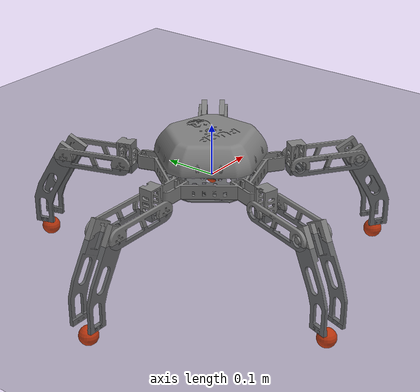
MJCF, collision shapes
<mujoco model="pentabot scene">
  <include file="pentabot.xml"/>
  <statistic center="0 0 0.1" extent="0.6"/>
  <visual>
    <headlight diffuse="0.6 0.6 0.6" ambient="0.3 0.3 0.3" specular="0 0 0"/>
    <global azimuth="120" elevation="-25" offwidth="1920" offheight="1080"/>
  </visual>
  <asset>
    <texture type="skybox" builtin="gradient" rgb1="0.25 0.28 0.33" rgb2="0.12 0.13 0.16" width="512" height="512"/>
    <texture type="2d" name="grid" builtin="checker" mark="edge" rgb1="0.2 0.22 0.25" rgb2="0.15 0.16 0.19"
             markrgb="0.8 0.8 0.8" width="300" height="300"/>
    <material name="grid" texture="grid" texrepeat="5 5" texuniform="true" reflectance="0.1"/>
  </asset>
  <worldbody>
    <light pos="0 0 1.5" dir="0 0 -1" directional="true"/>
    <geom name="floor" type="plane" size="0 0 0.05" material="grid" contype="1" conaffinity="1" condim="3" friction="0.9 0.005 0.0001"/>
  </worldbody>
</mujoco>

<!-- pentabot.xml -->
<mujoco model="pentabot">
  <compiler angle="radian" meshdir="assets" inertiafromgeom="false" autolimits="true"/>

  <option timestep="0.002" integrator="implicitfast" cone="elliptic" impratio="10"/>

  <default>
    <default class="pentabot">
      <default class="mg995">
        <!-- motor: damping = tau_stall/omega_0 reproduce la curva par-velocidad;
             armature = inercia reflejada del rotor (estimada, calibrar); frictionloss = rozamiento de engranajes -->
        <joint type="hinge" range="-1.5708 1.5708" damping="0.1499" armature="0.005" frictionloss="0.03"/>
        <position kp="11.241" forcerange="-0.981 0.981" ctrlrange="-1.5708 1.5708"/>
      </default>
      <default class="visual">
        <geom type="mesh" contype="0" conaffinity="0" group="2" mass="0" density="0"/>
      </default>
      <default class="collision">
        <!-- solo chocan con el suelo (sin auto-colisión) -->
        <geom type="mesh" contype="0" conaffinity="1" group="3" mass="0" density="0" friction="0.5 0.005 0.0001"/>
      </default>
      <default class="foot">
        <!-- esfera Ø36 mm con casquete TPU: fricción TPU-suelo ~0.9; condim 6 añade torsión/rodadura -->
        <geom type="sphere" size="0.018" contype="0" conaffinity="1" group="3" mass="0" density="0"
              condim="6" priority="1" friction="0.9 0.005 0.0001" solref="0.005 1" solimp="0.9 0.95 0.001"
              rgba="1 0.235 0 1"/>
      </default>
      <site group="4" rgba="0 1 0 0.5"/>
    </default>
  </default>

  <asset>
    <mesh name="6901" file="6901.stl" scale="0.001 0.001 0.001"/>
    <mesh name="6901_2" file="6901_2.stl" scale="0.001 0.001 0.001"/>
    <mesh name="BASEFINAL" file="BASEFINAL.stl" scale="0.001 0.001 0.001"/>
    <mesh name="CarcasaSuperiorExterna___copia" file="CarcasaSuperiorExterna___copia.stl" scale="0.001 0.001 0.001"/>
    <mesh name="Cuerpo" file="Cuerpo.stl" scale="0.001 0.001 0.001"/>
    <mesh name="Cuerpo___copia" file="Cuerpo___copia.stl" scale="0.001 0.001 0.001"/>
    <mesh name="PataBaseLargaRodamientoV2" file="PataBaseLargaRodamientoV2.stl" scale="0.001 0.001 0.001"/>
    <mesh name="PataTapaLargaServoHornV2" file="PataTapaLargaServoHornV2.stl" scale="0.001 0.001 0.001"/>
    <mesh name="PieEsfera_Nucleo_PLA" file="PieEsfera_Nucleo_PLA.stl" scale="0.001 0.001 0.001"/>
    <mesh name="PieEsfera_Suela_TPU" file="PieEsfera_Suela_TPU.stl" scale="0.001 0.001 0.001"/>
    <mesh name="Servo15" file="Servo15.stl" scale="0.001 0.001 0.001"/>
    <mesh name="ServomotorFinal" file="ServomotorFinal.stl" scale="0.001 0.001 0.001"/>
    <mesh name="ServomotorFinal_2" file="ServomotorFinal_2.stl" scale="0.001 0.001 0.001"/>
    <mesh name="SoporteServo" file="SoporteServo.stl" scale="0.001 0.001 0.001"/>
    <mesh name="SoporteServoHorn" file="SoporteServoHorn.stl" scale="0.001 0.001 0.001"/>
    <mesh name="SoporteServoRodamiento" file="SoporteServoRodamiento.stl" scale="0.001 0.001 0.001"/>
    <mesh name="SoporteServoToweV2" file="SoporteServoToweV2.stl" scale="0.001 0.001 0.001"/>
    <mesh name="baseFinalAcrilico" file="baseFinalAcrilico.stl" scale="0.001 0.001 0.001"/>
    <mesh name="carcasaHornFin" file="carcasaHornFin.stl" scale="0.001 0.001 0.001"/>
    <mesh name="carcasaRodamientoFin" file="carcasaRodamientoFin.stl" scale="0.001 0.001 0.001"/>
    <mesh name="servoHornArriba" file="servoHornArriba.stl" scale="0.001 0.001 0.001"/>
    <mesh name="servoHornRodamiento" file="servoHornRodamiento.stl" scale="0.001 0.001 0.001"/>
    <mesh name="servo_horn" file="servo_horn.stl" scale="0.001 0.001 0.001"/>
    <mesh name="servo_horn_2" file="servo_horn_2.stl" scale="0.001 0.001 0.001"/>
    <mesh name="unionHorn" file="unionHorn.stl" scale="0.001 0.001 0.001"/>
    <mesh name="unionRodamiento" file="unionRodamiento.stl" scale="0.001 0.001 0.001"/>
  </asset>

  <worldbody>
    <body name="torso" pos="-0.00329196 0.000169232 0.0123569" childclass="pentabot">
      <freejoint name="root"/>
      <inertial pos="-0.000171781 0.000513489 0.00774154" mass="0.914673" fullinertia="0.00458696 0.00462586 0.00795718 2.35641e-05 -1.07637e-06 3.65577e-06"/>
      <site name="imu" pos="-6.12359e-06 -0.000170475 -0.00275249" size="0.005"/>
      <geom class="visual" mesh="Cuerpo" pos="0.000167984 -0.000169232 -0.0145" quat="0.707107 0.707107 0 0" rgba="0.000 0.000 0.000 1"/>
      <geom class="collision" mesh="Cuerpo" pos="0.000167984 -0.000169232 -0.0145" quat="0.707107 0.707107 0 0"/>
      <geom class="visual" mesh="ServomotorFinal" pos="-0.0384197 -0.0862457 -0.021" quat="0.572061 0.572061 0.415627 0.415627" rgba="0.749 0.749 0.749 1"/>
      <geom class="visual" mesh="ServomotorFinal" pos="-0.0195483 0.0931956 -0.021" quat="0.572061 0.572061 -0.415627 -0.415627" rgba="0.749 0.749 0.749 1"/>
      <geom class="visual" mesh="ServomotorFinal" pos="0.0819806 0.0467868 -0.021" quat="-0.218508 -0.218508 0.672499 0.672499" rgba="0.749 0.749 0.749 1"/>
      <geom class="visual" mesh="ServomotorFinal" pos="0.0701073 -0.0634674 -0.021" quat="0.218508 0.218508 0.672499 0.672499" rgba="0.749 0.749 0.749 1"/>
      <geom class="visual" mesh="ServomotorFinal" pos="-0.0941199 0.00973077 -0.021" quat="0.707107 0.707107 0 0" rgba="0.749 0.749 0.749 1"/>
      <geom class="visual" mesh="carcasaHornFin" pos="0.0136743 -0.00126808 0.023" quat="-0.218508 -0.218508 0.672499 0.672499" rgba="1.000 0.184 0.000 1"/>
      <geom class="visual" mesh="carcasaRodamientoFin" pos="-0.00272996 -0.0108855 -0.021" quat="0.218508 0.218508 0.672499 0.672499" rgba="1.000 0.118 0.000 1"/>
      <geom class="visual" mesh="carcasaHornFin" pos="0.00329661 -0.0133541 0.023" quat="0.218508 0.218508 0.672499 0.672499" rgba="1.000 0.184 0.000 1"/>
      <geom class="visual" mesh="carcasaHornFin" pos="-0.0114048 -0.00721908 0.023" quat="0.572061 0.572061 0.415627 0.415627" rgba="1.000 0.184 0.000 1"/>
      <geom class="visual" mesh="carcasaHornFin" pos="-0.010113 0.00865858 0.023" quat="0.707107 0.707107 0 0" rgba="1.000 0.184 0.000 1"/>
      <geom class="visual" mesh="carcasaHornFin" pos="0.00488674 0.0123365 0.023" quat="0.572061 0.572061 -0.415627 -0.415627" rgba="1.000 0.184 0.000 1"/>
      <geom class="visual" mesh="carcasaRodamientoFin" pos="-0.0114048 -0.00107732 -0.021" quat="0.572061 0.572061 0.415627 0.415627" rgba="1.000 0.118 0.000 1"/>
      <geom class="visual" mesh="carcasaRodamientoFin" pos="-0.00427184 0.0105565 -0.021" quat="0.707107 0.707107 0 0" rgba="1.000 0.118 0.000 1"/>
      <geom class="visual" mesh="carcasaRodamientoFin" pos="0.00899677 0.00736772 -0.021" quat="0.572061 0.572061 -0.415627 -0.415627" rgba="1.000 0.118 0.000 1"/>
      <geom class="visual" mesh="carcasaRodamientoFin" pos="0.00956429 -0.00623686 -0.021" quat="-0.218508 -0.218508 0.672499 0.672499" rgba="1.000 0.118 0.000 1"/>
      <geom class="visual" mesh="CarcasaSuperiorExterna___copia" pos="0.000131827 6.18243e-05 0.0282" quat="0.218508 0.218508 0.672499 0.672499" rgba="0.078 0.078 0.078 1"/>
      <geom class="collision" mesh="CarcasaSuperiorExterna___copia" pos="0.000131827 6.18243e-05 0.0282" quat="0.218508 0.218508 0.672499 0.672499"/>
      <geom class="visual" mesh="BASEFINAL" pos="0.000167984 -0.000169232 -0.0145" quat="0.707107 -0.707107 0 0" rgba="1.000 0.184 0.000 1"/>
      <geom class="visual" mesh="baseFinalAcrilico" pos="0.000167984 -0.000169232 -0.0254317" quat="0.707107 -0.707107 0 0" rgba="0.000 0.000 0.000 1"/>
      <geom class="collision" mesh="baseFinalAcrilico" pos="0.000167984 -0.000169232 -0.0254317" quat="0.707107 -0.707107 0 0"/>
      <geom class="visual" mesh="Cuerpo___copia" pos="0.000176852 -0.000162789 0.0125" quat="0.707107 0.707107 0 0" rgba="1.000 0.000 0.000 1"/>
      <geom class="visual" mesh="Cuerpo___copia" pos="0.000176852 -0.000175676 0.0125" quat="0.572061 0.572061 -0.415627 -0.415627" rgba="1.000 0.000 0.000 1"/>
      <geom class="visual" mesh="Cuerpo___copia" pos="0.000164596 -0.000179658 0.0125" quat="-0.218508 -0.218508 0.672499 0.672499" rgba="1.000 0.000 0.000 1"/>
      <geom class="visual" mesh="Cuerpo___copia" pos="0.000164596 -0.000158807 0.0125" quat="0.572061 0.572061 0.415627 0.415627" rgba="1.000 0.000 0.000 1"/>
      <geom class="visual" mesh="Cuerpo___copia" pos="-0.000342978 -0.000169232 0.0125" quat="0.218508 0.218508 0.672499 0.672499" rgba="1.000 0.000 0.000 1"/>
      <body name="L1_coxa" pos="0.100454 0.0725693 0">
        <inertial pos="0.0285945 0.0228486 -0.000248578" mass="0.115033" fullinertia="6.50899e-05 6.83343e-05 5.68148e-05 -8.77e-06 -7.35982e-06 -6.07662e-06"/>
        <joint name="L1_hip_yaw" class="mg995" axis="0 0 1"/>
        <geom class="visual" mesh="SoporteServo" pos="0.0483404 0.0184345 0.128617" quat="0.672499 0.218508 -0.672499 0.218508" rgba="1.000 0.200 0.000 1"/>
        <geom class="collision" mesh="SoporteServo" pos="0.0483404 0.0184345 0.128617" quat="0.672499 0.218508 -0.672499 0.218508"/>
        <geom class="visual" mesh="ServomotorFinal_2" pos="0.0562516 0.0161478 0.0223" quat="0.672499 0.218508 -0.672499 0.218508" rgba="0.361 0.600 0.239 1"/>
        <geom class="visual" mesh="SoporteServoRodamiento" pos="0.0449115 0.00667268 0.128617" quat="-0.218508 0.672499 0.218508 0.672499" rgba="0.000 0.000 0.000 1"/>
        <geom class="visual" mesh="SoporteServoHorn" pos="0.0262985 0.0487726 0.128617" quat="0.672499 0.218508 -0.672499 0.218508" rgba="0.000 0.000 0.000 1"/>
        <geom class="visual" mesh="servoHornRodamiento" pos="0.0290422 0.00255938 -0.0215" quat="0 -0.309017 0.951057 0" rgba="0.000 0.000 0.000 1"/>
        <geom class="visual" mesh="servoHornArriba" pos="0.0432184 -0.0088882 0.031" quat="0 -0.309017 0.951057 0" rgba="0.000 0.000 0.000 1"/>
        <geom class="visual" mesh="6901_2" pos="0 0 -0.028" quat="-0.218508 0.672499 0.218508 0.672499" rgba="0.898 0.898 0.898 1"/>
        <geom class="visual" mesh="servo_horn_2" pos="0 0 0.028" quat="0 0.951057 0.309017 0" rgba="0.867 0.910 1.000 1"/>
        <body name="L1_femur" pos="0.0341355 0.0297452 -0.0079">
          <inertial pos="0.0549389 0.0263815 1.64958e-05" mass="0.0512586" fullinertia="7.68241e-05 0.000112082 0.00017809 -5.38767e-05 -4.26206e-08 -4.71157e-09"/>
          <joint name="L1_hip_pitch" class="mg995" axis="0.587785 -0.809017 0"/>
          <geom class="visual" mesh="unionRodamiento" pos="0.0407979 -0.013621 -0.015" quat="-0.218508 -0.218508 0.672499 0.672499" rgba="0.000 0.000 0.000 1"/>
          <geom class="collision" mesh="unionRodamiento" pos="0.0407979 -0.013621 -0.015" quat="-0.218508 -0.218508 0.672499 0.672499"/>
          <geom class="visual" mesh="6901" pos="0.111777 0.0503088 0" quat="0.630037 0.630037 -0.32102 -0.32102" rgba="0.898 0.898 0.898 1"/>
          <geom class="visual" mesh="6901" pos="0.0146946 -0.0202254 0" quat="0.630037 0.630037 -0.32102 -0.32102" rgba="0.898 0.898 0.898 1"/>
          <geom class="visual" mesh="unionHorn" pos="0.0567108 0.0755037 -0.0325938" quat="0.672499 0.672499 0.218508 0.218508" rgba="0.000 0.000 0.000 1"/>
          <geom class="collision" mesh="unionHorn" pos="0.0567108 0.0755037 -0.0325938" quat="0.672499 0.672499 0.218508 0.218508"/>
          <geom class="visual" mesh="servo_horn" pos="-0.0146946 0.0202254 0" quat="0.674138 0.67082 0.223607 0.213396" rgba="0.867 0.910 1.000 1"/>
          <geom class="visual" mesh="servo_horn" pos="0.0823874 0.0907597 0" quat="0.674138 0.67082 0.223607 0.213396" rgba="0.867 0.910 1.000 1"/>
          <body name="L1_tibia" pos="0.097082 0.0705342 0">
            <inertial pos="0.0166262 0.0115893 -0.0488036" mass="0.14381" fullinertia="0.000615039 0.000634373 0.000120352 -2.68698e-05 0.000159122 0.00011282"/>
            <joint name="L1_knee" class="mg995" axis="0.587785 -0.809017 0"/>
            <geom class="visual" mesh="Servo15" pos="0.019074 -0.0158076 -0.0306344" quat="0.823639 -0.154508 0.475528 0.267617" rgba="0.329 0.537 0.220 1"/>
            <geom class="visual" mesh="PataBaseLargaRodamientoV2" pos="0.00482338 -0.0261612 0.0198753" quat="0.45399 0 0 0.891007" rgba="0.059 0.059 0.059 1"/>
            <geom class="collision" mesh="PataBaseLargaRodamientoV2" pos="0.00482338 -0.0261612 0.0198753" quat="0.45399 0 0 0.891007"/>
            <geom class="visual" mesh="PataTapaLargaServoHornV2" pos="-0.0230964 0.0122671 0.0198753" quat="0 0.891007 -0.45399 0" rgba="0.000 0.000 0.000 1"/>
            <geom class="collision" mesh="PataTapaLargaServoHornV2" pos="-0.0230964 0.0122671 0.0198753" quat="0 0.891007 -0.45399 0"/>
            <geom class="visual" mesh="SoporteServoToweV2" pos="0.0625893 0.0238426 -0.121465" quat="0.823639 -0.154508 0.475528 0.267617" rgba="1.000 0.235 0.000 1"/>
            <geom class="visual" mesh="PieEsfera_Nucleo_PLA" pos="0.0446353 0.0315024 -0.152671" quat="0.672499 -0.218508 0.672499 0.218508" rgba="0.059 0.059 0.059 1"/>
            <geom class="visual" mesh="PieEsfera_Suela_TPU" pos="0.0446353 0.0315024 -0.152671" quat="0.672499 -0.218508 0.672499 0.218508" rgba="1 0.235 0 1"/>
            <geom name="L1_foot" class="foot" pos="0.0446353 0.0315024 -0.172671"/>
            <site name="L1_foot" pos="0.0446353 0.0315024 -0.172671" size="0.019"/>
          </body>
        </body>
      </body>
      <body name="L2_coxa" pos="-0.0383603 0.118732 0">
        <inertial pos="-0.0128941 0.0342555 -0.000248578" mass="0.115033" fullinertia="7.31794e-05 6.02449e-05 5.68148e-05 6.14157e-06 3.5049e-06 -8.87738e-06"/>
        <joint name="L2_hip_yaw" class="mg995" axis="0 0 1"/>
        <geom class="visual" mesh="SoporteServo" pos="-0.0025942 0.051671 0.128617" quat="0.415627 0.572061 -0.415627 0.572061" rgba="1.000 0.200 0.000 1"/>
        <geom class="collision" mesh="SoporteServo" pos="-0.0025942 0.051671 0.128617" quat="0.415627 0.572061 -0.415627 0.572061"/>
        <geom class="visual" mesh="ServomotorFinal_2" pos="0.0020252 0.0584884 0.0223" quat="0.415627 0.572061 -0.415627 0.572061" rgba="0.361 0.600 0.239 1"/>
        <geom class="visual" mesh="SoporteServoRodamiento" pos="0.00753232 0.0447753 0.128617" quat="0.572061 -0.415627 -0.572061 -0.415627" rgba="0.000 0.000 0.000 1"/>
        <geom class="visual" mesh="SoporteServoHorn" pos="-0.0382588 0.0400829 0.128617" quat="0.415627 0.572061 -0.415627 0.572061" rgba="0.000 0.000 0.000 1"/>
        <geom class="visual" mesh="servoHornRodamiento" pos="0.00654042 0.0284117 -0.0215" quat="0 0.809017 -0.587785 0" rgba="0.000 0.000 0.000 1"/>
        <geom class="visual" mesh="servoHornArriba" pos="0.0218084 0.0383565 0.031" quat="0 0.809017 -0.587785 0" rgba="0.000 0.000 0.000 1"/>
        <geom class="visual" mesh="6901_2" pos="0 0 -0.028" quat="0.572061 -0.415627 -0.572061 -0.415627" rgba="0.898 0.898 0.898 1"/>
        <geom class="visual" mesh="servo_horn_2" pos="0 0 0.028" quat="0 0.587785 0.809017 0" rgba="0.867 0.910 1.000 1"/>
        <body name="L2_femur" pos="-0.0177409 0.0416566 -0.0079">
          <inertial pos="-0.00811322 0.0604023 1.64958e-05" mass="0.0512586" fullinertia="0.000140383 4.8523e-05 0.00017809 3.32252e-05 -8.68953e-09 -4.19906e-08"/>
          <joint name="L2_hip_pitch" class="mg995" axis="0.951057 0.309017 0"/>
          <geom class="visual" mesh="unionRodamiento" pos="0.0255616 0.034592 -0.015" quat="0.572061 0.572061 -0.415627 -0.415627" rgba="0.000 0.000 0.000 1"/>
          <geom class="collision" mesh="unionRodamiento" pos="0.0255616 0.034592 -0.015" quat="0.572061 0.572061 -0.415627 -0.415627"/>
          <geom class="visual" mesh="6901" pos="-0.0133056 0.121852 0" quat="0.698401 0.698401 0.110616 0.110616" rgba="0.898 0.898 0.898 1"/>
          <geom class="visual" mesh="6901" pos="0.0237764 0.00772542 0" quat="0.698401 0.698401 0.110616 0.110616" rgba="0.898 0.898 0.898 1"/>
          <geom class="visual" mesh="unionHorn" pos="-0.0542837 0.0772671 -0.0325938" quat="0.415627 0.415627 0.572061 0.572061" rgba="0.000 0.000 0.000 1"/>
          <geom class="collision" mesh="unionHorn" pos="-0.0542837 0.0772671 -0.0325938" quat="0.415627 0.415627 0.572061 0.572061"/>
          <geom class="visual" mesh="servo_horn" pos="-0.0237764 -0.00772542 0" quat="0.419958 0.411272 0.5752 0.56889" rgba="0.867 0.910 1.000 1"/>
          <geom class="visual" mesh="servo_horn" pos="-0.0608585 0.106401 0" quat="0.419958 0.411272 0.5752 0.56889" rgba="0.867 0.910 1.000 1"/>
          <body name="L2_tibia" pos="-0.037082 0.114127 0">
            <inertial pos="-0.00588431 0.0193937 -0.0488036" mass="0.14381" fullinertia="0.00064832 0.000601091 0.000120352 1.6056e-05 -5.81269e-05 0.000186197"/>
            <joint name="L2_knee" class="mg995" axis="0.951057 0.309017 0"/>
            <geom class="visual" mesh="Servo15" pos="0.0209281 0.0132557 -0.0306344" quat="0.509037 -0.404508 0.293893 0.700629" rgba="0.329 0.537 0.220 1"/>
            <geom class="visual" mesh="PataBaseLargaRodamientoV2" pos="0.0263713 -0.00349697 0.0198753" quat="-0.156434 0 0 0.987688" rgba="0.059 0.059 0.059 1"/>
            <geom class="collision" mesh="PataBaseLargaRodamientoV2" pos="0.0263713 -0.00349697 0.0198753" quat="-0.156434 0 0 0.987688"/>
            <geom class="visual" mesh="PataTapaLargaServoHornV2" pos="-0.0188039 -0.0181753 0.0198753" quat="0 0.987688 0.156434 0" rgba="0.000 0.000 0.000 1"/>
            <geom class="collision" mesh="PataTapaLargaServoHornV2" pos="-0.0188039 -0.0181753 0.0198753" quat="0 0.987688 0.156434 0"/>
            <geom class="visual" mesh="SoporteServoToweV2" pos="-0.00333451 0.0668937 -0.121465" quat="0.509037 -0.404508 0.293893 0.700629" rgba="1.000 0.235 0.000 1"/>
            <geom class="visual" mesh="PieEsfera_Nucleo_PLA" pos="-0.0161675 0.0521855 -0.152671" quat="-0.415627 0.572061 -0.415627 -0.572061" rgba="0.059 0.059 0.059 1"/>
            <geom class="visual" mesh="PieEsfera_Suela_TPU" pos="-0.0161675 0.0521855 -0.152671" quat="-0.415627 0.572061 -0.415627 -0.572061" rgba="1 0.235 0 1"/>
            <geom name="L2_foot" class="foot" pos="-0.0161675 0.0521855 -0.172671"/>
            <site name="L2_foot" pos="-0.0161675 0.0521855 -0.172671" size="0.019"/>
          </body>
        </body>
      </body>
      <body name="L3_coxa" pos="-0.12422 -0.000269232 0">
        <inertial pos="-0.0365635 -0.00167749 -0.000248578" mass="0.115033" fullinertia="5.78701e-05 7.55542e-05 5.68148e-05 -1.16728e-06 9.52597e-06 5.90099e-07"/>
        <joint name="L3_hip_yaw" class="mg995" axis="0 0 1"/>
        <geom class="visual" mesh="SoporteServo" pos="-0.0499437 0.0135 0.128617" quat="0 0.707107 0 0.707107" rgba="1.000 0.200 0.000 1"/>
        <geom class="collision" mesh="SoporteServo" pos="-0.0499437 0.0135 0.128617" quat="0 0.707107 0 0.707107"/>
        <geom class="visual" mesh="ServomotorFinal_2" pos="-0.055 0.02 0.0223" quat="0 0.707107 0 0.707107" rgba="0.361 0.600 0.239 1"/>
        <geom class="visual" mesh="SoporteServoRodamiento" pos="-0.0402563 0.021 0.128617" quat="0.707107 0 -0.707107 0" rgba="0.000 0.000 0.000 1"/>
        <geom class="visual" mesh="SoporteServoHorn" pos="-0.0499437 -0.024 0.128617" quat="0 0.707107 0 0.707107" rgba="0.000 0.000 0.000 1"/>
        <geom class="visual" mesh="servoHornRodamiento" pos="-0.025 0.015 -0.0215" quat="0 1 0 0" rgba="0.000 0.000 0.000 1"/>
        <geom class="visual" mesh="servoHornArriba" pos="-0.02974 0.0325938 0.031" quat="0 1 0 0" rgba="0.000 0.000 0.000 1"/>
        <geom class="visual" mesh="6901_2" pos="0 0 -0.028" quat="0.707107 0 -0.707107 0" rgba="0.898 0.898 0.898 1"/>
        <geom class="visual" mesh="servo_horn_2" pos="0 0 0.028" quat="0 0 1 0" rgba="0.867 0.910 1.000 1"/>
        <body name="L3_femur" pos="-0.0451 -0.004 -0.0079">
          <inertial pos="-0.0599531 0.0109492 1.64958e-05" mass="0.0512586" fullinertia="3.77656e-05 0.00015114 0.00017809 1.17221e-07 3.72502e-08 -2.124e-08"/>
          <joint name="L3_hip_pitch" class="mg995" axis="0 1 0"/>
          <geom class="visual" mesh="unionRodamiento" pos="-0.025 0.035 -0.015" quat="0.707107 0.707107 0 0" rgba="0.000 0.000 0.000 1"/>
          <geom class="collision" mesh="unionRodamiento" pos="-0.025 0.035 -0.015" quat="0.707107 0.707107 0 0"/>
          <geom class="visual" mesh="6901" pos="-0.12 0.025 0" quat="0.5 0.5 0.5 0.5" rgba="0.898 0.898 0.898 1"/>
          <geom class="visual" mesh="6901" pos="0 0.025 0" quat="0.5 0.5 0.5 0.5" rgba="0.898 0.898 0.898 1"/>
          <geom class="visual" mesh="unionHorn" pos="-0.09026 -0.02775 -0.0325938" quat="0 0 0.707107 0.707107" rgba="0.000 0.000 0.000 1"/>
          <geom class="collision" mesh="unionHorn" pos="-0.09026 -0.02775 -0.0325938" quat="0 0 0.707107 0.707107"/>
          <geom class="visual" mesh="servo_horn" pos="0 -0.025 0" quat="0.00536798 -0.00536798 0.707086 0.707086" rgba="0.867 0.910 1.000 1"/>
          <geom class="visual" mesh="servo_horn" pos="-0.12 -0.025 0" quat="0.00536798 -0.00536798 0.707086 0.707086" rgba="0.867 0.910 1.000 1"/>
          <body name="L3_tibia" pos="-0.12 0 0">
            <inertial pos="-0.0202629 0.000396684 -0.0488036" mass="0.14381" fullinertia="0.000596164 0.000653248 0.000120352 8.90718e-07 -0.000195046 2.25599e-06"/>
            <joint name="L3_knee" class="mg995" axis="0 1 0"/>
            <geom class="visual" mesh="Servo15" pos="-0.00613975 0.024 -0.0306344" quat="0 -0.5 0 0.866025" rgba="0.329 0.537 0.220 1"/>
            <geom class="visual" mesh="PataBaseLargaRodamientoV2" pos="0.011475 0.024 0.0198753" quat="0.707107 0 0 -0.707107" rgba="0.059 0.059 0.059 1"/>
            <geom class="collision" mesh="PataBaseLargaRodamientoV2" pos="0.011475 0.024 0.0198753" quat="0.707107 0 0 -0.707107"/>
            <geom class="visual" mesh="PataTapaLargaServoHornV2" pos="0.011475 -0.0235 0.0198753" quat="0 0.707107 0.707107 0" rgba="0.000 0.000 0.000 1"/>
            <geom class="collision" mesh="PataTapaLargaServoHornV2" pos="0.011475 -0.0235 0.0198753" quat="0 0.707107 0.707107 0"/>
            <geom class="visual" mesh="SoporteServoToweV2" pos="-0.0646502 0.0175 -0.121465" quat="0 -0.5 0 0.866025" rgba="1.000 0.235 0.000 1"/>
            <geom class="visual" mesh="PieEsfera_Nucleo_PLA" pos="-0.0546274 0.00075 -0.152671" quat="0 0.707107 0 -0.707107" rgba="0.059 0.059 0.059 1"/>
            <geom class="visual" mesh="PieEsfera_Suela_TPU" pos="-0.0546274 0.00075 -0.152671" quat="0 0.707107 0 -0.707107" rgba="1 0.235 0 1"/>
            <geom name="L3_foot" class="foot" pos="-0.0546274 0.00075 -0.172671"/>
            <site name="L3_foot" pos="-0.0546274 0.00075 -0.172671" size="0.019"/>
          </body>
        </body>
      </body>
      <body name="L4_coxa" pos="-0.0382106 -0.117963 0">
        <inertial pos="-0.00970334 -0.0352923 -0.000248578" mass="0.115033" fullinertia="7.45516e-05 5.88726e-05 5.68148e-05 -4.25288e-06 2.38247e-06 9.24208e-06"/>
        <joint name="L4_hip_yaw" class="mg995" axis="0 0 1"/>
        <geom class="visual" mesh="SoporteServo" pos="-0.0282727 -0.0433276 0.128617" quat="-0.415627 0.572061 0.415627 0.572061" rgba="1.000 0.200 0.000 1"/>
        <geom class="collision" mesh="SoporteServo" pos="-0.0282727 -0.0433276 0.128617" quat="-0.415627 0.572061 0.415627 0.572061"/>
        <geom class="visual" mesh="ServomotorFinal_2" pos="-0.0360171 -0.0461278 0.0223" quat="-0.415627 0.572061 0.415627 0.572061" rgba="0.361 0.600 0.239 1"/>
        <geom class="visual" mesh="SoporteServoRodamiento" pos="-0.0324121 -0.0317966 0.128617" quat="0.572061 0.415627 -0.572061 0.415627" rgba="0.000 0.000 0.000 1"/>
        <geom class="visual" mesh="SoporteServoHorn" pos="0.00739189 -0.0549157 0.128617" quat="-0.415627 0.572061 0.415627 0.572061" rgba="0.000 0.000 0.000 1"/>
        <geom class="visual" mesh="servoHornRodamiento" pos="-0.0219913 -0.0191412 -0.0215" quat="0 0.809017 0.587785 0" rgba="0.000 0.000 0.000 1"/>
        <geom class="visual" mesh="servoHornArriba" pos="-0.0401887 -0.0182124 0.031" quat="0 0.809017 0.587785 0" rgba="0.000 0.000 0.000 1"/>
        <geom class="visual" mesh="6901_2" pos="0 0 -0.028" quat="0.572061 0.415627 -0.572061 0.415627" rgba="0.898 0.898 0.898 1"/>
        <geom class="visual" mesh="servo_horn_2" pos="0 0 0.028" quat="0 -0.587785 0.809017 0" rgba="0.867 0.910 1.000 1"/>
        <body name="L4_femur" pos="-0.0101324 -0.0441287 -0.0079">
          <inertial pos="-0.0289398 -0.0536353 1.64958e-05" mass="0.0512586" fullinertia="0.000140245 4.86608e-05 0.00017809 -3.34149e-05 3.17114e-08 2.88635e-08"/>
          <joint name="L4_hip_pitch" class="mg995" axis="-0.951057 0.309017 0"/>
          <geom class="visual" mesh="unionRodamiento" pos="-0.0410124 -0.0129608 -0.015" quat="0.572061 0.572061 0.415627 0.415627" rgba="0.000 0.000 0.000 1"/>
          <geom class="collision" mesh="unionRodamiento" pos="-0.0410124 -0.0129608 -0.015" quat="0.572061 0.572061 0.415627 0.415627"/>
          <geom class="visual" mesh="6901" pos="-0.0608585 -0.106401 0" quat="0.110616 0.110616 0.698401 0.698401" rgba="0.898 0.898 0.898 1"/>
          <geom class="visual" mesh="6901" pos="-0.0237764 0.00772542 0" quat="0.110616 0.110616 0.698401 0.698401" rgba="0.898 0.898 0.898 1"/>
          <geom class="visual" mesh="unionHorn" pos="-0.00150004 -0.0944175 -0.0325938" quat="-0.415627 -0.415627 0.572061 0.572061" rgba="0.000 0.000 0.000 1"/>
          <geom class="collision" mesh="unionHorn" pos="-0.00150004 -0.0944175 -0.0325938" quat="-0.415627 -0.415627 0.572061 0.572061"/>
          <geom class="visual" mesh="servo_horn" pos="0.0237764 -0.00772542 0" quat="-0.411272 -0.419958 0.56889 0.5752" rgba="0.867 0.910 1.000 1"/>
          <geom class="visual" mesh="servo_horn" pos="-0.0133056 -0.121852 0" quat="-0.411272 -0.419958 0.56889 0.5752" rgba="0.867 0.910 1.000 1"/>
          <body name="L4_tibia" pos="-0.037082 -0.114127 0">
            <inertial pos="-0.00663885 -0.0191486 -0.0488036" mass="0.14381" fullinertia="0.000647273 0.000602138 0.000120352 -1.74972e-05 -6.24181e-05 -0.000184803"/>
            <joint name="L4_knee" class="mg995" axis="-0.951057 0.309017 0"/>
            <geom class="visual" mesh="Servo15" pos="-0.0247226 0.00157716 -0.0306344" quat="0.509037 0.404508 0.293893 -0.700629" rgba="0.329 0.537 0.220 1"/>
            <geom class="visual" mesh="PataBaseLargaRodamientoV2" pos="-0.0192794 0.0183298 0.0198753" quat="0.987688 0 0 -0.156434" rgba="0.059 0.059 0.059 1"/>
            <geom class="collision" mesh="PataBaseLargaRodamientoV2" pos="-0.0192794 0.0183298 0.0198753" quat="0.987688 0 0 -0.156434"/>
            <geom class="visual" mesh="PataTapaLargaServoHornV2" pos="0.0258958 0.00365147 0.0198753" quat="0 0.156434 0.987688 0" rgba="0.000 0.000 0.000 1"/>
            <geom class="collision" mesh="PataTapaLargaServoHornV2" pos="0.0258958 0.00365147 0.0198753" quat="0 0.156434 0.987688 0"/>
            <geom class="visual" mesh="SoporteServoToweV2" pos="-0.0366215 -0.0560782 -0.121465" quat="0.509037 0.404508 0.293893 -0.700629" rgba="1.000 0.235 0.000 1"/>
            <geom class="visual" mesh="PieEsfera_Nucleo_PLA" pos="-0.0175941 -0.051722 -0.152671" quat="0.415627 0.572061 0.415627 -0.572061" rgba="0.059 0.059 0.059 1"/>
            <geom class="visual" mesh="PieEsfera_Suela_TPU" pos="-0.0175941 -0.051722 -0.152671" quat="0.415627 0.572061 0.415627 -0.572061" rgba="1 0.235 0 1"/>
            <geom name="L4_foot" class="foot" pos="-0.0175941 -0.051722 -0.172671"/>
            <site name="L4_foot" pos="-0.0175941 -0.051722 -0.172671" size="0.019"/>
          </body>
        </body>
      </body>
      <body name="L5_coxa" pos="0.100337 -0.0730696 0">
        <inertial pos="0.0305665 -0.0201343 -0.000248578" mass="0.115033" fullinertia="6.28696e-05 7.05546e-05 5.68148e-05 8.04858e-06 -8.05352e-06 5.12182e-06"/>
        <joint name="L5_hip_yaw" class="mg995" axis="0 0 1"/>
        <geom class="visual" mesh="SoporteServo" pos="0.0324702 -0.0402779 0.128617" quat="0.672499 -0.218508 -0.672499 -0.218508" rgba="1.000 0.200 0.000 1"/>
        <geom class="collision" mesh="SoporteServo" pos="0.0324702 -0.0402779 0.128617" quat="0.672499 -0.218508 -0.672499 -0.218508"/>
        <geom class="visual" mesh="ServomotorFinal_2" pos="0.0327402 -0.0485085 0.0223" quat="0.672499 -0.218508 -0.672499 -0.218508" rgba="0.361 0.600 0.239 1"/>
        <geom class="visual" mesh="SoporteServoRodamiento" pos="0.0202245 -0.0406514 0.128617" quat="0.218508 0.672499 -0.218508 0.672499" rgba="0.000 0.000 0.000 1"/>
        <geom class="visual" mesh="SoporteServoHorn" pos="0.0545122 -0.00993978 0.128617" quat="0.672499 -0.218508 -0.672499 -0.218508" rgba="0.000 0.000 0.000 1"/>
        <geom class="visual" mesh="servoHornRodamiento" pos="0.0114086 -0.0268299 -0.0215" quat="0 0.309017 0.951057 0" rgba="0.000 0.000 0.000 1"/>
        <geom class="visual" mesh="servoHornArriba" pos="0.00490203 -0.0438497 0.031" quat="0 0.309017 0.951057 0" rgba="0.000 0.000 0.000 1"/>
        <geom class="visual" mesh="6901_2" pos="0 0 -0.028" quat="0.218508 0.672499 -0.218508 0.672499" rgba="0.898 0.898 0.898 1"/>
        <geom class="visual" mesh="servo_horn_2" pos="0 0 0.028" quat="0 0.951057 -0.309017 0" rgba="0.867 0.910 1.000 1"/>
        <body name="L5_femur" pos="0.0388378 -0.023273 -0.0079">
          <inertial pos="0.0420673 -0.0440977 1.64958e-05" mass="0.0512586" fullinertia="7.70471e-05 0.000111859 0.00017809 5.39492e-05 -1.76515e-08 3.90787e-08"/>
          <joint name="L5_hip_pitch" class="mg995" axis="-0.587785 -0.809017 0"/>
          <geom class="visual" mesh="unionRodamiento" pos="-0.000347059 -0.0430102 -0.015" quat="0.218508 0.218508 0.672499 0.672499" rgba="0.000 0.000 0.000 1"/>
          <geom class="collision" mesh="unionRodamiento" pos="-0.000347059 -0.0430102 -0.015" quat="0.218508 0.218508 0.672499 0.672499"/>
          <geom class="visual" mesh="6901" pos="0.0823874 -0.0907597 0" quat="-0.32102 -0.32102 0.630037 0.630037" rgba="0.898 0.898 0.898 1"/>
          <geom class="visual" mesh="6901" pos="-0.0146946 -0.0202254 0" quat="-0.32102 -0.32102 0.630037 0.630037" rgba="0.898 0.898 0.898 1"/>
          <geom class="visual" mesh="unionHorn" pos="0.0893329 -0.0306033 -0.0325938" quat="0.672499 0.672499 -0.218508 -0.218508" rgba="0.000 0.000 0.000 1"/>
          <geom class="collision" mesh="unionHorn" pos="0.0893329 -0.0306033 -0.0325938" quat="0.672499 0.672499 -0.218508 -0.218508"/>
          <geom class="visual" mesh="servo_horn" pos="0.0146946 0.0202254 0" quat="0.67082 0.674138 -0.213396 -0.223607" rgba="0.867 0.910 1.000 1"/>
          <geom class="visual" mesh="servo_horn" pos="0.111777 -0.0503088 0" quat="0.67082 0.674138 -0.213396 -0.223607" rgba="0.867 0.910 1.000 1"/>
          <body name="L5_tibia" pos="0.097082 -0.0705342 0">
            <inertial pos="0.0161599 -0.0122312 -0.0488036" mass="0.14381" fullinertia="0.000616733 0.000632679 0.000120352 2.74203e-05 0.000156469 -0.00011647"/>
            <joint name="L5_knee" class="mg995" axis="-0.587785 -0.809017 0"/>
            <geom class="visual" mesh="Servo15" pos="-0.00913969 -0.0230253 -0.0306344" quat="0.823639 0.154508 0.475528 -0.267617" rgba="0.329 0.537 0.220 1"/>
            <geom class="visual" mesh="PataBaseLargaRodamientoV2" pos="-0.0233903 -0.0126716 0.0198753" quat="0.891007 0 0 0.45399" rgba="0.059 0.059 0.059 1"/>
            <geom class="collision" mesh="PataBaseLargaRodamientoV2" pos="-0.0233903 -0.0126716 0.0198753" quat="0.891007 0 0 0.45399"/>
            <geom class="visual" mesh="PataTapaLargaServoHornV2" pos="0.00452948 0.0257567 0.0198753" quat="0 -0.45399 0.891007 0" rgba="0.000 0.000 0.000 1"/>
            <geom class="collision" mesh="PataTapaLargaServoHornV2" pos="0.00452948 0.0257567 0.0198753" quat="0 -0.45399 0.891007 0"/>
            <geom class="visual" mesh="SoporteServoToweV2" pos="0.0420168 -0.0521582 -0.121465" quat="0.823639 0.154508 0.475528 -0.267617" rgba="1.000 0.235 0.000 1"/>
            <geom class="visual" mesh="PieEsfera_Nucleo_PLA" pos="0.0437536 -0.0327159 -0.152671" quat="0.672499 0.218508 0.672499 -0.218508" rgba="0.059 0.059 0.059 1"/>
            <geom class="visual" mesh="PieEsfera_Suela_TPU" pos="0.0437536 -0.0327159 -0.152671" quat="0.672499 0.218508 0.672499 -0.218508" rgba="1 0.235 0 1"/>
            <geom name="L5_foot" class="foot" pos="0.0437536 -0.0327159 -0.172671"/>
            <site name="L5_foot" pos="0.0437536 -0.0327159 -0.172671" size="0.019"/>
          </body>
        </body>
      </body>
    </body>
  </worldbody>

  <actuator>
    <position name="L1_hip_yaw" joint="L1_hip_yaw" class="mg995"/>
    <position name="L1_hip_pitch" joint="L1_hip_pitch" class="mg995"/>
    <position name="L1_knee" joint="L1_knee" class="mg995"/>
    <position name="L2_hip_yaw" joint="L2_hip_yaw" class="mg995"/>
    <position name="L2_hip_pitch" joint="L2_hip_pitch" class="mg995"/>
    <position name="L2_knee" joint="L2_knee" class="mg995"/>
    <position name="L3_hip_yaw" joint="L3_hip_yaw" class="mg995"/>
    <position name="L3_hip_pitch" joint="L3_hip_pitch" class="mg995"/>
    <position name="L3_knee" joint="L3_knee" class="mg995"/>
    <position name="L4_hip_yaw" joint="L4_hip_yaw" class="mg995"/>
    <position name="L4_hip_pitch" joint="L4_hip_pitch" class="mg995"/>
    <position name="L4_knee" joint="L4_knee" class="mg995"/>
    <position name="L5_hip_yaw" joint="L5_hip_yaw" class="mg995"/>
    <position name="L5_hip_pitch" joint="L5_hip_pitch" class="mg995"/>
    <position name="L5_knee" joint="L5_knee" class="mg995"/>
  </actuator>

  <sensor>
    <framequat name="imu_quat" objtype="site" objname="imu"/>
    <gyro name="imu_gyro" site="imu"/>
    <accelerometer name="imu_acc" site="imu"/>
    <velocimeter name="imu_vel" site="imu"/>
    <jointpos name="L1_hip_yaw_pos" joint="L1_hip_yaw"/>
    <jointpos name="L1_hip_pitch_pos" joint="L1_hip_pitch"/>
    <jointpos name="L1_knee_pos" joint="L1_knee"/>
    <jointpos name="L2_hip_yaw_pos" joint="L2_hip_yaw"/>
    <jointpos name="L2_hip_pitch_pos" joint="L2_hip_pitch"/>
    <jointpos name="L2_knee_pos" joint="L2_knee"/>
    <jointpos name="L3_hip_yaw_pos" joint="L3_hip_yaw"/>
    <jointpos name="L3_hip_pitch_pos" joint="L3_hip_pitch"/>
    <jointpos name="L3_knee_pos" joint="L3_knee"/>
    <jointpos name="L4_hip_yaw_pos" joint="L4_hip_yaw"/>
    <jointpos name="L4_hip_pitch_pos" joint="L4_hip_pitch"/>
    <jointpos name="L4_knee_pos" joint="L4_knee"/>
    <jointpos name="L5_hip_yaw_pos" joint="L5_hip_yaw"/>
    <jointpos name="L5_hip_pitch_pos" joint="L5_hip_pitch"/>
    <jointpos name="L5_knee_pos" joint="L5_knee"/>
    <jointvel name="L1_hip_yaw_vel" joint="L1_hip_yaw"/>
    <jointvel name="L1_hip_pitch_vel" joint="L1_hip_pitch"/>
    <jointvel name="L1_knee_vel" joint="L1_knee"/>
    <jointvel name="L2_hip_yaw_vel" joint="L2_hip_yaw"/>
    <jointvel name="L2_hip_pitch_vel" joint="L2_hip_pitch"/>
    <jointvel name="L2_knee_vel" joint="L2_knee"/>
    <jointvel name="L3_hip_yaw_vel" joint="L3_hip_yaw"/>
    <jointvel name="L3_hip_pitch_vel" joint="L3_hip_pitch"/>
    <jointvel name="L3_knee_vel" joint="L3_knee"/>
    <jointvel name="L4_hip_yaw_vel" joint="L4_hip_yaw"/>
    <jointvel name="L4_hip_pitch_vel" joint="L4_hip_pitch"/>
    <jointvel name="L4_knee_vel" joint="L4_knee"/>
    <jointvel name="L5_hip_yaw_vel" joint="L5_hip_yaw"/>
    <jointvel name="L5_hip_pitch_vel" joint="L5_hip_pitch"/>
    <jointvel name="L5_knee_vel" joint="L5_knee"/>
    <actuatorfrc name="L1_hip_yaw_tau" actuator="L1_hip_yaw"/>
    <actuatorfrc name="L1_hip_pitch_tau" actuator="L1_hip_pitch"/>
    <actuatorfrc name="L1_knee_tau" actuator="L1_knee"/>
    <actuatorfrc name="L2_hip_yaw_tau" actuator="L2_hip_yaw"/>
    <actuatorfrc name="L2_hip_pitch_tau" actuator="L2_hip_pitch"/>
    <actuatorfrc name="L2_knee_tau" actuator="L2_knee"/>
    <actuatorfrc name="L3_hip_yaw_tau" actuator="L3_hip_yaw"/>
    <actuatorfrc name="L3_hip_pitch_tau" actuator="L3_hip_pitch"/>
    <actuatorfrc name="L3_knee_tau" actuator="L3_knee"/>
    <actuatorfrc name="L4_hip_yaw_tau" actuator="L4_hip_yaw"/>
    <actuatorfrc name="L4_hip_pitch_tau" actuator="L4_hip_pitch"/>
    <actuatorfrc name="L4_knee_tau" actuator="L4_knee"/>
    <actuatorfrc name="L5_hip_yaw_tau" actuator="L5_hip_yaw"/>
    <actuatorfrc name="L5_hip_pitch_tau" actuator="L5_hip_pitch"/>
    <actuatorfrc name="L5_knee_tau" actuator="L5_knee"/>
    <touch name="L1_foot_touch" site="L1_foot"/>
    <touch name="L2_foot_touch" site="L2_foot"/>
    <touch name="L3_foot_touch" site="L3_foot"/>
    <touch name="L4_foot_touch" site="L4_foot"/>
    <touch name="L5_foot_touch" site="L5_foot"/>
  </sensor>
  <keyframe>
    <key name="home" qpos="0 0 0.198571 1 0 0 0 0 0 0 0 0 0 0 0 0 0 0 0 0 0 0" ctrl="0 0 0 0 0 0 0 0 0 0 0 0 0 0 0"/>
    <key name="cad" qpos="0 0 0.198571 1 0 0 0 0 0 0 0 1.30875 -1.39626 0 1.39626 0.523599 0 0 0 0 0 0" ctrl="0 0 0 0 1.30875 -1.39626 0 1.39626 0.523599 0 0 0 0 0 0"/>
  </keyframe>
</mujoco>
